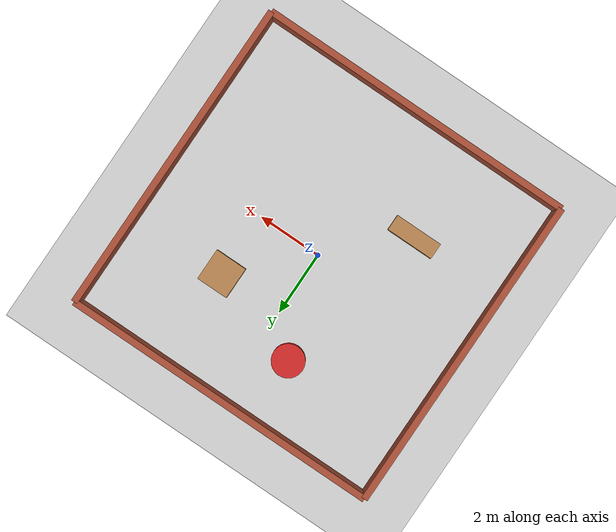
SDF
<?xml version="1.0" ?>
<sdf version="1.6">
  <world name="turtle_world">

    <include>
      <uri>model://ground_plane</uri>
    </include>

    <include>
      <uri>model://sun</uri>
    </include>

    <!-- A simple house-like environment -->
    <model name="house">
      <static>true</static>
      <link name="walls">
        <!-- Outer walls -->
        <visual name="wall1">
          <pose>5 0 1 0 0 0</pose>
          <geometry>
            <box>
              <size>0.2 10 2</size>
            </box>
          </geometry>
          <material>
            <script>
              <name>Gazebo/Bricks</name>
            </script>
          </material>
        </visual>
        <collision name="wall1_collision">
          <pose>5 0 1 0 0 0</pose>
          <geometry>
            <box>
              <size>0.2 10 2</size>
            </box>
          </geometry>
        </collision>

        <visual name="wall2">
          <pose>-5 0 1 0 0 0</pose>
          <geometry>
            <box>
              <size>0.2 10 2</size>
            </box>
          </geometry>
          <material>
            <script>
              <name>Gazebo/Bricks</name>
            </script>
          </material>
        </visual>
        <collision name="wall2_collision">
          <pose>-5 0 1 0 0 0</pose>
          <geometry>
            <box>
              <size>0.2 10 2</size>
            </box>
          </geometry>
        </collision>

        <visual name="wall3">
          <pose>0 5 1 0 0 0</pose>
          <geometry>
            <box>
              <size>10 0.2 2</size>
            </box>
          </geometry>
          <material>
            <script>
              <name>Gazebo/Bricks</name>
            </script>
          </material>
        </visual>
        <collision name="wall3_collision">
          <pose>0 5 1 0 0 0</pose>
          <geometry>
            <box>
              <size>10 0.2 2</size>
            </box>
          </geometry>
        </collision>

        <visual name="wall4">
          <pose>0 -5 1 0 0 0</pose>
          <geometry>
            <box>
              <size>10 0.2 2</size>
            </box>
          </geometry>
          <material>
            <script>
              <name>Gazebo/Bricks</name>
            </script>
          </material>
        </visual>
        <collision name="wall4_collision">
          <pose>0 -5 1 0 0 0</pose>
          <geometry>
            <box>
              <size>10 0.2 2</size>
            </box>
          </geometry>
        </collision>

        <!-- Inner obstacles -->
        <visual name="obstacle1">
          <pose>2 2 0.5 0 0 0</pose>
          <geometry>
            <box>
              <size>1 1 1</size>
            </box>
          </geometry>
          <material>
            <script>
              <name>Gazebo/Wood</name>
            </script>
          </material>
        </visual>
        <collision name="obstacle1_collision">
          <pose>2 2 0.5 0 0 0</pose>
          <geometry>
            <box>
              <size>1 1 1</size>
            </box>
          </geometry>
        </collision>

        <visual name="obstacle2">
          <pose>-2 -2 0.5 0 0 0</pose>
          <geometry>
            <box>
              <size>1.5 0.5 1</size>
            </box>
          </geometry>
          <material>
            <script>
              <name>Gazebo/Wood</name>
            </script>
          </material>
        </visual>
        <collision name="obstacle2_collision">
          <pose>-2 -2 0.5 0 0 0</pose>
          <geometry>
            <box>
              <size>1.5 0.5 1</size>
            </box>
          </geometry>
        </collision>

        <visual name="obstacle3">
          <pose>-1 3 0.5 0 0 0</pose>
          <geometry>
            <cylinder>
              <radius>0.5</radius>
              <length>1</length>
            </cylinder>
          </geometry>
          <material>
            <script>
              <name>Gazebo/Red</name>
            </script>
          </material>
        </visual>
        <collision name="obstacle3_collision">
          <pose>-1 3 0.5 0 0 0</pose>
          <geometry>
            <cylinder>
              <radius>0.5</radius>
              <length>1</length>
            </cylinder>
          </geometry>
        </collision>
      </link>
    </model>

    <!-- Physics settings -->
    <physics name="default_physics" default="0" type="ode">
      <gravity>0 0 -9.8066</gravity>
      <ode>
        <solver>
          <type>quick</type>
          <iters>150</iters>
          <sor>1.3</sor>
        </solver>
        <constraints>
          <cfm>0.00001</cfm>
          <erp>0.2</erp>
          <contact_max_correcting_vel>1000</contact_max_correcting_vel>
          <contact_surface_layer>0.01</contact_surface_layer>
        </constraints>
      </ode>
      <max_step_size>0.004</max_step_size>
      <real_time_factor>1</real_time_factor>
      <real_time_update_rate>250</real_time_update_rate>
    </physics>

    <plugin name="gazebo_ros_state" filename="libgazebo_ros_state.so">
      <ros>
        <namespace>/</namespace>
        <remapping>gazebo_ros_state:=gazebo_ros_state</remapping>
      </ros>
      <update_rate>1.0</update_rate>
    </plugin>

  </world>
</sdf>
